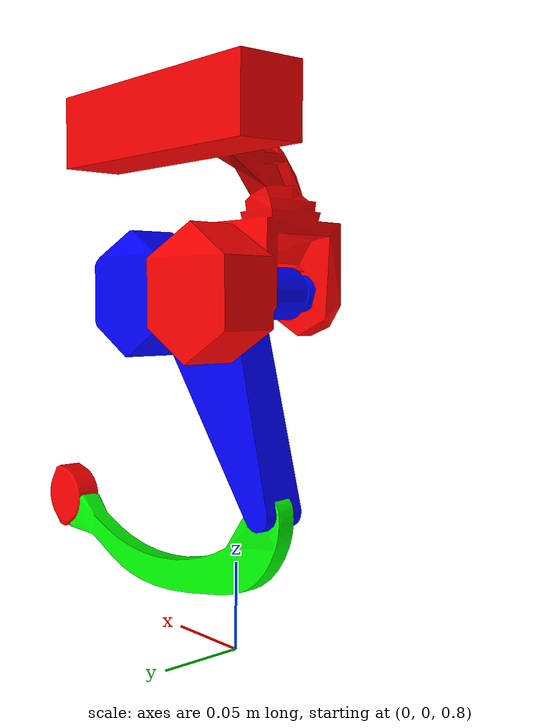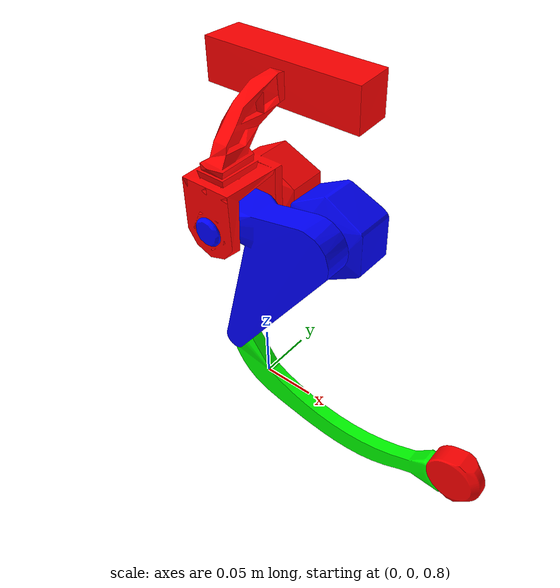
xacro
<?xml version="1.0"?>
<robot xmlns:xacro="http://www.ros.org/wiki/xacro" name="robot">
    <xacro:arg name="use_sim_time" default="false" />
    <xacro:arg name="torque_control" default="false" />
    <xacro:arg name="position_control" default="false" />
    <xacro:property name="L1_length" default="0.125" />
    <xacro:property name="L2_length" default="0.215" />
    <xacro:property name="max_torque" default="20.1" />
    <link name="world">
    </link>

    <joint name="slider_joint" type="prismatic">
        <parent link="world" />
        <child link="base_link" />
        <origin xyz="0 0 1.0" rpy="0 0 0" />
        <axis xyz="0 0 1" />
        <limit effort="0" lower="-10.0" upper="10" velocity="100.0" />
        <dynamics damping="0.0" friction="0.0" />
    </joint>

    <link name="base_link">
        <visual>
            <geometry>
                <xacro:if value="$(arg use_sim_time)">
                    <mesh filename="file://$(find robot_description)/meshes/base_link.STL" />
                </xacro:if>
                <xacro:unless value="$(arg use_sim_time)">
                    <!-- for preview -->
                    <mesh filename="../meshes/base_link.STL" />
                </xacro:unless>
            </geometry>
            <material name="red">
                <color rgba="1 0 0 1" />
            </material>
        </visual>
        <inertial>
            <origin xyz="0.0 0 0" rpy="0 0 0" />
            <mass value="0.39" />
            <inertia ixx="0.1" ixy="0.0" ixz="0.0"
                iyy="0.1" iyz="0.0" izz="0.1" />
        </inertial>
    </link>

    <joint name="hip_joint" type="revolute">
        <parent link="base_link" />
        <child link="hip_link" />
        <origin xyz="0 0 0" rpy="${pi/2} ${pi/2} 0" />
        <axis xyz="0 0 1" />
        <limit effort="${max_torque}" lower="-2.8" upper="0.46" velocity="31.67" />
        <dynamics damping="0.01" friction="0.01" />
    </joint>

    <link name="hip_link">
        <visual>
            <geometry>
                <xacro:if value="$(arg use_sim_time)">
                    <mesh filename="file://$(find robot_description)/meshes/hip.STL" />
                </xacro:if>
                <xacro:unless value="$(arg use_sim_time)">
                    <!-- for preview -->
                    <mesh filename="../meshes/hip.STL" />
                </xacro:unless>
            </geometry>
            <material name="blue">
                <color rgba="0 0 1 1" />
            </material>
        </visual>
        <collision>
            <geometry>
                <mesh filename="file://$(find robot_description)/meshes/hip_collision.STL" />
                <!-- for preview -->
            </geometry>
        </collision>
        <inertial>
            <origin xyz="0.016172 0.057426 0.010825" rpy="0 0 0" />
            <mass value="0.5" />
            <inertia ixx="0.01" ixy=" 0.0" ixz="0.0"
                iyy="0.01" iyz="0.0" izz="0.01275" />
        </inertial>
    </link>

    <joint name="knee_joint" type="revolute">
        <parent link="hip_link" />
        <child link="knee_link" />
        <origin xyz="${L1_length} 0 0.0277" rpy="0 0 0" />
        <axis xyz="0 0 1" />
        <limit effort="${max_torque}" lower="0.3" upper="2.62" velocity="31.67" />
        <dynamics damping="0.01" friction="0.01" />
    </joint>

    <link name="knee_link">
        <visual>
            <geometry>
                <xacro:if value="$(arg use_sim_time)">
                    <mesh filename="file://$(find robot_description)/meshes/knee.STL" />
                </xacro:if>
                <xacro:unless value="$(arg use_sim_time)">
                    <!-- for preview -->
                    <mesh filename="../meshes/knee.STL" />
                </xacro:unless>
            </geometry>
            <material name="green">
                <color rgba="0 1 0 1" />
            </material>
        </visual>
        <collision>
            <geometry>
                <mesh filename="file://$(find robot_description)/meshes/knee_collision.STL" />
                <!-- for preview -->
            </geometry>
        </collision>
        <inertial>
            <origin xyz="0.119035 -0.021572 0.000043" rpy="0 0 0" />
            <mass value="0.055566" />
            <inertia ixx="0.01" ixy="0.0" ixz="0.0"
                iyy="0.01" iyz="0.0" izz="0.00407" />
        </inertial>
    </link>

    <!-- This has to be a revolute joint for some dumb reason -->
    <!-- Can also change this manually in the sdf to a fixed joint -->
    <joint name="contact_joint" type="fixed">
        <parent link="knee_link" />
        <child link="foot_link" />
        <origin xyz="${L2_length} 0 0" rpy="0 0 0" />
        <axis xyz="0 0 1" />
        <limit effort="1e-5" lower="0" upper="0" velocity="1e-5" />
        <dynamics damping="0.0" friction="0.0" />
    </joint>

    <link name="foot_link">
        <visual>
            <geometry>
                <xacro:if value="$(arg use_sim_time)">
                    <mesh filename="file://$(find robot_description)/meshes/foot.STL" />
                </xacro:if>
                <xacro:unless value="$(arg use_sim_time)">
                    <!-- for preview -->
                    <mesh filename="../meshes/foot.STL" />
                </xacro:unless>
            </geometry>
            <material name="red">
                <color rgba="1 0 0 1" />
            </material>
        </visual>
        <!-- Something is wrong with the urdf/xacro/sdf conversion.
         This collision name changes when the sim is launched. -->
        <collision>
            <geometry>
                <sphere radius="0.02414" />
            </geometry>
        </collision>
        <inertial>
            <origin xyz="0.000290 -0.000906 -0.000052" rpy="0 0 0" />
            <mass value="0.013619" />
            <inertia ixx="0.01" ixy="0.0" ixz="0.0"
                iyy="0.01" iyz="0.0" izz="0.000004" />
        </inertial>
    </link>

    <xacro:if value="$(arg use_sim_time)">
        <xacro:include filename="$(find robot_description)/description/simulation.xacro" />
        <xacro:if value="$(arg torque_control)">
            <xacro:include filename="$(find robot_description)/description/torque_control.xacro" />
        </xacro:if>
        <xacro:if value="$(arg position_control)">
            <xacro:include filename="$(find robot_description)/description/position_control.xacro" />
        </xacro:if>
    </xacro:if>
</robot>
